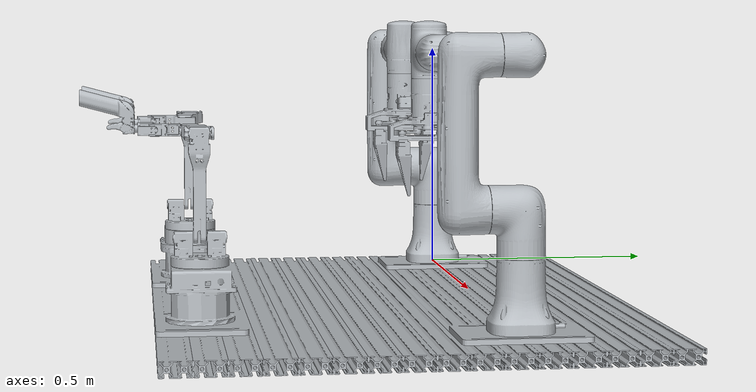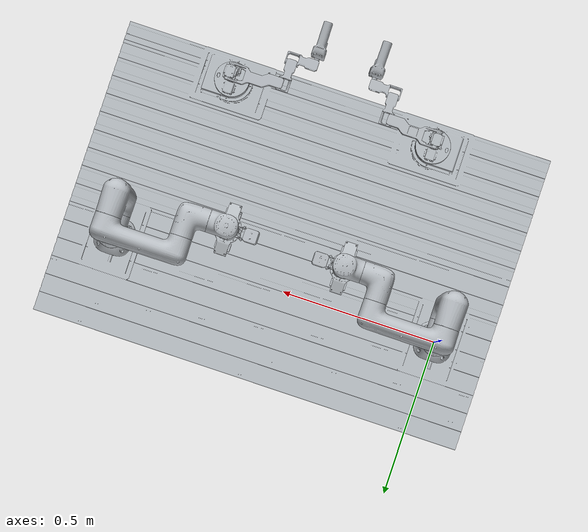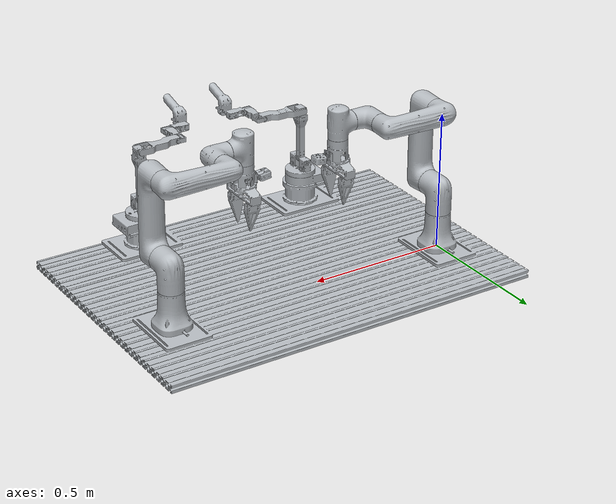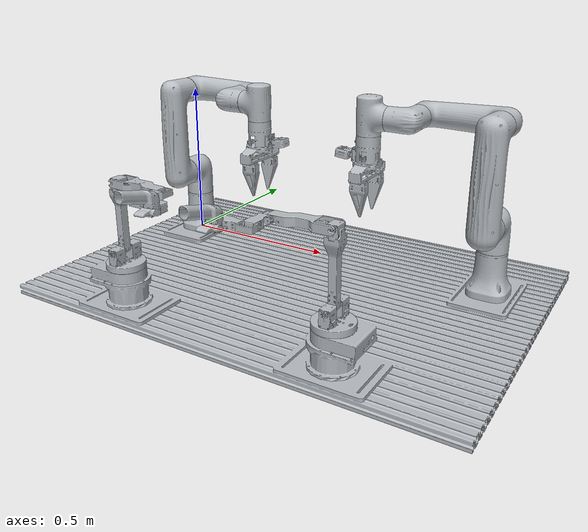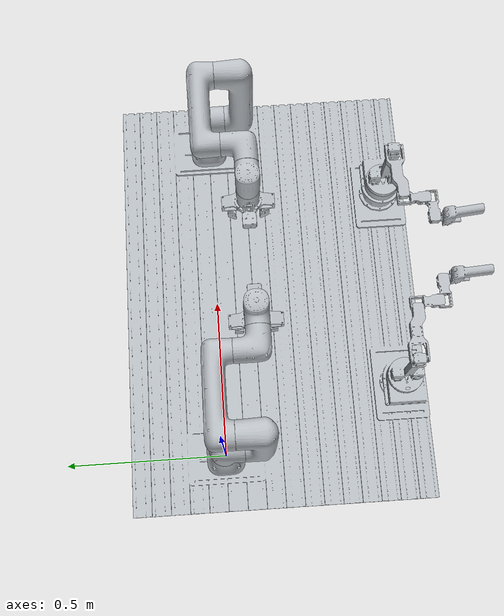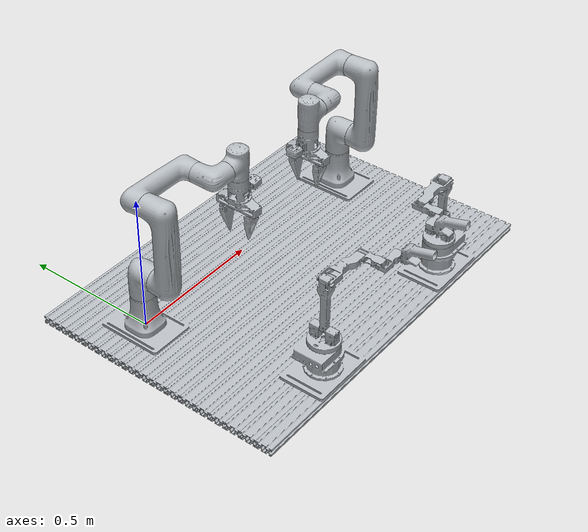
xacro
<?xml version="1.0"?>
<robot name="xtrainer_full_visual" xmlns:xacro="http://www.ros.org/wiki/xacro">
  <link name="xtrainer_root"/>
  <material name="xtrainer_visual_mat">
    <color rgba="0.72 0.74 0.76 1.0"/>
  </material>
  <link name="xtrainer_J1_1">
    <inertial>
      <origin xyz="0 0 0" rpy="0 0 0"/>
      <mass value="0.01"/>
      <inertia ixx="1e-5" ixy="0" ixz="0" iyy="1e-5" iyz="0" izz="1e-5"/>
    </inertial>
    <visual>
      <origin xyz="0 0 0" rpy="0 0 0"/>
      <geometry>
        <mesh filename="file://$(find nova_xtainer_description)/meshes/xtrainer_full_usd/J1_1.stl"/>
      </geometry>
      <material name="xtrainer_visual_mat"/>
    </visual>
  </link>
  <joint name="world_to_xtrainer_J1_1" type="fixed">
    <origin xyz="0 0 0" rpy="0 0 0"/>
    <parent link="xtrainer_root"/>
    <child link="xtrainer_J1_1"/>
  </joint>
  <link name="xtrainer_J1_2">
    <inertial>
      <origin xyz="0 0 0" rpy="0 0 0"/>
      <mass value="0.01"/>
      <inertia ixx="1e-5" ixy="0" ixz="0" iyy="1e-5" iyz="0" izz="1e-5"/>
    </inertial>
    <visual>
      <origin xyz="0 0 0" rpy="0 0 0"/>
      <geometry>
        <mesh filename="file://$(find nova_xtainer_description)/meshes/xtrainer_full_usd/J1_2.stl"/>
      </geometry>
      <material name="xtrainer_visual_mat"/>
    </visual>
  </link>
  <joint name="world_to_xtrainer_J1_2" type="fixed">
    <origin xyz="0 0 0" rpy="0 0 0"/>
    <parent link="xtrainer_root"/>
    <child link="xtrainer_J1_2"/>
  </joint>
  <link name="xtrainer_J1_3">
    <inertial>
      <origin xyz="0 0 0" rpy="0 0 0"/>
      <mass value="0.01"/>
      <inertia ixx="1e-5" ixy="0" ixz="0" iyy="1e-5" iyz="0" izz="1e-5"/>
    </inertial>
    <visual>
      <origin xyz="0 0 0" rpy="0 0 0"/>
      <geometry>
        <mesh filename="file://$(find nova_xtainer_description)/meshes/xtrainer_full_usd/J1_3.stl"/>
      </geometry>
      <material name="xtrainer_visual_mat"/>
    </visual>
  </link>
  <joint name="world_to_xtrainer_J1_3" type="fixed">
    <origin xyz="0 0 0" rpy="0 0 0"/>
    <parent link="xtrainer_root"/>
    <child link="xtrainer_J1_3"/>
  </joint>
  <link name="xtrainer_J1_4">
    <inertial>
      <origin xyz="0 0 0" rpy="0 0 0"/>
      <mass value="0.01"/>
      <inertia ixx="1e-5" ixy="0" ixz="0" iyy="1e-5" iyz="0" izz="1e-5"/>
    </inertial>
    <visual>
      <origin xyz="0 0 0" rpy="0 0 0"/>
      <geometry>
        <mesh filename="file://$(find nova_xtainer_description)/meshes/xtrainer_full_usd/J1_4.stl"/>
      </geometry>
      <material name="xtrainer_visual_mat"/>
    </visual>
  </link>
  <joint name="world_to_xtrainer_J1_4" type="fixed">
    <origin xyz="0 0 0" rpy="0 0 0"/>
    <parent link="xtrainer_root"/>
    <child link="xtrainer_J1_4"/>
  </joint>
  <link name="xtrainer_J1_5">
    <inertial>
      <origin xyz="0 0 0" rpy="0 0 0"/>
      <mass value="0.01"/>
      <inertia ixx="1e-5" ixy="0" ixz="0" iyy="1e-5" iyz="0" izz="1e-5"/>
    </inertial>
    <visual>
      <origin xyz="0 0 0" rpy="0 0 0"/>
      <geometry>
        <mesh filename="file://$(find nova_xtainer_description)/meshes/xtrainer_full_usd/J1_5.stl"/>
      </geometry>
      <material name="xtrainer_visual_mat"/>
    </visual>
  </link>
  <joint name="world_to_xtrainer_J1_5" type="fixed">
    <origin xyz="0 0 0" rpy="0 0 0"/>
    <parent link="xtrainer_root"/>
    <child link="xtrainer_J1_5"/>
  </joint>
  <link name="xtrainer_J1_6">
    <inertial>
      <origin xyz="0 0 0" rpy="0 0 0"/>
      <mass value="0.01"/>
      <inertia ixx="1e-5" ixy="0" ixz="0" iyy="1e-5" iyz="0" izz="1e-5"/>
    </inertial>
    <visual>
      <origin xyz="0 0 0" rpy="0 0 0"/>
      <geometry>
        <mesh filename="file://$(find nova_xtainer_description)/meshes/xtrainer_full_usd/J1_6.stl"/>
      </geometry>
      <material name="xtrainer_visual_mat"/>
    </visual>
  </link>
  <joint name="world_to_xtrainer_J1_6" type="fixed">
    <origin xyz="0 0 0" rpy="0 0 0"/>
    <parent link="xtrainer_root"/>
    <child link="xtrainer_J1_6"/>
  </joint>
  <link name="xtrainer_J1_7">
    <inertial>
      <origin xyz="0 0 0" rpy="0 0 0"/>
      <mass value="0.01"/>
      <inertia ixx="1e-5" ixy="0" ixz="0" iyy="1e-5" iyz="0" izz="1e-5"/>
    </inertial>
    <visual>
      <origin xyz="0 0 0" rpy="0 0 0"/>
      <geometry>
        <mesh filename="file://$(find nova_xtainer_description)/meshes/xtrainer_full_usd/J1_7.stl"/>
      </geometry>
      <material name="xtrainer_visual_mat"/>
    </visual>
  </link>
  <joint name="world_to_xtrainer_J1_7" type="fixed">
    <origin xyz="0 0 0" rpy="0 0 0"/>
    <parent link="xtrainer_root"/>
    <child link="xtrainer_J1_7"/>
  </joint>
  <link name="xtrainer_J1_8">
    <inertial>
      <origin xyz="0 0 0" rpy="0 0 0"/>
      <mass value="0.01"/>
      <inertia ixx="1e-5" ixy="0" ixz="0" iyy="1e-5" iyz="0" izz="1e-5"/>
    </inertial>
    <visual>
      <origin xyz="0 0 0" rpy="0 0 0"/>
      <geometry>
        <mesh filename="file://$(find nova_xtainer_description)/meshes/xtrainer_full_usd/J1_8.stl"/>
      </geometry>
      <material name="xtrainer_visual_mat"/>
    </visual>
  </link>
  <joint name="world_to_xtrainer_J1_8" type="fixed">
    <origin xyz="0 0 0" rpy="0 0 0"/>
    <parent link="xtrainer_root"/>
    <child link="xtrainer_J1_8"/>
  </joint>
  <link name="xtrainer_J2_1">
    <inertial>
      <origin xyz="0 0 0" rpy="0 0 0"/>
      <mass value="0.01"/>
      <inertia ixx="1e-5" ixy="0" ixz="0" iyy="1e-5" iyz="0" izz="1e-5"/>
    </inertial>
    <visual>
      <origin xyz="0 0 0" rpy="0 0 0"/>
      <geometry>
        <mesh filename="file://$(find nova_xtainer_description)/meshes/xtrainer_full_usd/J2_1.stl"/>
      </geometry>
      <material name="xtrainer_visual_mat"/>
    </visual>
  </link>
  <joint name="world_to_xtrainer_J2_1" type="fixed">
    <origin xyz="0 0 0" rpy="0 0 0"/>
    <parent link="xtrainer_root"/>
    <child link="xtrainer_J2_1"/>
  </joint>
  <link name="xtrainer_J2_2">
    <inertial>
      <origin xyz="0 0 0" rpy="0 0 0"/>
      <mass value="0.01"/>
      <inertia ixx="1e-5" ixy="0" ixz="0" iyy="1e-5" iyz="0" izz="1e-5"/>
    </inertial>
    <visual>
      <origin xyz="0 0 0" rpy="0 0 0"/>
      <geometry>
        <mesh filename="file://$(find nova_xtainer_description)/meshes/xtrainer_full_usd/J2_2.stl"/>
      </geometry>
      <material name="xtrainer_visual_mat"/>
    </visual>
  </link>
  <joint name="world_to_xtrainer_J2_2" type="fixed">
    <origin xyz="0 0 0" rpy="0 0 0"/>
    <parent link="xtrainer_root"/>
    <child link="xtrainer_J2_2"/>
  </joint>
  <link name="xtrainer_J2_3">
    <inertial>
      <origin xyz="0 0 0" rpy="0 0 0"/>
      <mass value="0.01"/>
      <inertia ixx="1e-5" ixy="0" ixz="0" iyy="1e-5" iyz="0" izz="1e-5"/>
    </inertial>
    <visual>
      <origin xyz="0 0 0" rpy="0 0 0"/>
      <geometry>
        <mesh filename="file://$(find nova_xtainer_description)/meshes/xtrainer_full_usd/J2_3.stl"/>
      </geometry>
      <material name="xtrainer_visual_mat"/>
    </visual>
  </link>
  <joint name="world_to_xtrainer_J2_3" type="fixed">
    <origin xyz="0 0 0" rpy="0 0 0"/>
    <parent link="xtrainer_root"/>
    <child link="xtrainer_J2_3"/>
  </joint>
  <link name="xtrainer_J2_4">
    <inertial>
      <origin xyz="0 0 0" rpy="0 0 0"/>
      <mass value="0.01"/>
      <inertia ixx="1e-5" ixy="0" ixz="0" iyy="1e-5" iyz="0" izz="1e-5"/>
    </inertial>
    <visual>
      <origin xyz="0 0 0" rpy="0 0 0"/>
      <geometry>
        <mesh filename="file://$(find nova_xtainer_description)/meshes/xtrainer_full_usd/J2_4.stl"/>
      </geometry>
      <material name="xtrainer_visual_mat"/>
    </visual>
  </link>
  <joint name="world_to_xtrainer_J2_4" type="fixed">
    <origin xyz="0 0 0" rpy="0 0 0"/>
    <parent link="xtrainer_root"/>
    <child link="xtrainer_J2_4"/>
  </joint>
  <link name="xtrainer_J2_5">
    <inertial>
      <origin xyz="0 0 0" rpy="0 0 0"/>
      <mass value="0.01"/>
      <inertia ixx="1e-5" ixy="0" ixz="0" iyy="1e-5" iyz="0" izz="1e-5"/>
    </inertial>
    <visual>
      <origin xyz="0 0 0" rpy="0 0 0"/>
      <geometry>
        <mesh filename="file://$(find nova_xtainer_description)/meshes/xtrainer_full_usd/J2_5.stl"/>
      </geometry>
      <material name="xtrainer_visual_mat"/>
    </visual>
  </link>
  <joint name="world_to_xtrainer_J2_5" type="fixed">
    <origin xyz="0 0 0" rpy="0 0 0"/>
    <parent link="xtrainer_root"/>
    <child link="xtrainer_J2_5"/>
  </joint>
  <link name="xtrainer_J2_6">
    <inertial>
      <origin xyz="0 0 0" rpy="0 0 0"/>
      <mass value="0.01"/>
      <inertia ixx="1e-5" ixy="0" ixz="0" iyy="1e-5" iyz="0" izz="1e-5"/>
    </inertial>
    <visual>
      <origin xyz="0 0 0" rpy="0 0 0"/>
      <geometry>
        <mesh filename="file://$(find nova_xtainer_description)/meshes/xtrainer_full_usd/J2_6.stl"/>
      </geometry>
      <material name="xtrainer_visual_mat"/>
    </visual>
  </link>
  <joint name="world_to_xtrainer_J2_6" type="fixed">
    <origin xyz="0 0 0" rpy="0 0 0"/>
    <parent link="xtrainer_root"/>
    <child link="xtrainer_J2_6"/>
  </joint>
  <link name="xtrainer_J2_7">
    <inertial>
      <origin xyz="0 0 0" rpy="0 0 0"/>
      <mass value="0.01"/>
      <inertia ixx="1e-5" ixy="0" ixz="0" iyy="1e-5" iyz="0" izz="1e-5"/>
    </inertial>
    <visual>
      <origin xyz="0 0 0" rpy="0 0 0"/>
      <geometry>
        <mesh filename="file://$(find nova_xtainer_description)/meshes/xtrainer_full_usd/J2_7.stl"/>
      </geometry>
      <material name="xtrainer_visual_mat"/>
    </visual>
  </link>
  <joint name="world_to_xtrainer_J2_7" type="fixed">
    <origin xyz="0 0 0" rpy="0 0 0"/>
    <parent link="xtrainer_root"/>
    <child link="xtrainer_J2_7"/>
  </joint>
  <link name="xtrainer_J2_8">
    <inertial>
      <origin xyz="0 0 0" rpy="0 0 0"/>
      <mass value="0.01"/>
      <inertia ixx="1e-5" ixy="0" ixz="0" iyy="1e-5" iyz="0" izz="1e-5"/>
    </inertial>
    <visual>
      <origin xyz="0 0 0" rpy="0 0 0"/>
      <geometry>
        <mesh filename="file://$(find nova_xtainer_description)/meshes/xtrainer_full_usd/J2_8.stl"/>
      </geometry>
      <material name="xtrainer_visual_mat"/>
    </visual>
  </link>
  <joint name="world_to_xtrainer_J2_8" type="fixed">
    <origin xyz="0 0 0" rpy="0 0 0"/>
    <parent link="xtrainer_root"/>
    <child link="xtrainer_J2_8"/>
  </joint>
  <link name="xtrainer_J3_1">
    <inertial>
      <origin xyz="0 0 0" rpy="0 0 0"/>
      <mass value="0.01"/>
      <inertia ixx="1e-5" ixy="0" ixz="0" iyy="1e-5" iyz="0" izz="1e-5"/>
    </inertial>
    <visual>
      <origin xyz="0 0 0" rpy="0 0 0"/>
      <geometry>
        <mesh filename="file://$(find nova_xtainer_description)/meshes/xtrainer_full_usd/J3_1.stl"/>
      </geometry>
      <material name="xtrainer_visual_mat"/>
    </visual>
  </link>
  <joint name="world_to_xtrainer_J3_1" type="fixed">
    <origin xyz="0 0 0" rpy="0 0 0"/>
    <parent link="xtrainer_root"/>
    <child link="xtrainer_J3_1"/>
  </joint>
  <link name="xtrainer_J3_2">
    <inertial>
      <origin xyz="0 0 0" rpy="0 0 0"/>
      <mass value="0.01"/>
      <inertia ixx="1e-5" ixy="0" ixz="0" iyy="1e-5" iyz="0" izz="1e-5"/>
    </inertial>
    <visual>
      <origin xyz="0 0 0" rpy="0 0 0"/>
      <geometry>
        <mesh filename="file://$(find nova_xtainer_description)/meshes/xtrainer_full_usd/J3_2.stl"/>
      </geometry>
      <material name="xtrainer_visual_mat"/>
    </visual>
  </link>
  <joint name="world_to_xtrainer_J3_2" type="fixed">
    <origin xyz="0 0 0" rpy="0 0 0"/>
    <parent link="xtrainer_root"/>
    <child link="xtrainer_J3_2"/>
  </joint>
  <link name="xtrainer_J3_3">
    <inertial>
      <origin xyz="0 0 0" rpy="0 0 0"/>
      <mass value="0.01"/>
      <inertia ixx="1e-5" ixy="0" ixz="0" iyy="1e-5" iyz="0" izz="1e-5"/>
    </inertial>
    <visual>
      <origin xyz="0 0 0" rpy="0 0 0"/>
      <geometry>
        <mesh filename="file://$(find nova_xtainer_description)/meshes/xtrainer_full_usd/J3_3.stl"/>
      </geometry>
      <material name="xtrainer_visual_mat"/>
    </visual>
  </link>
  <joint name="world_to_xtrainer_J3_3" type="fixed">
    <origin xyz="0 0 0" rpy="0 0 0"/>
    <parent link="xtrainer_root"/>
    <child link="xtrainer_J3_3"/>
  </joint>
  <link name="xtrainer_J3_4">
    <inertial>
      <origin xyz="0 0 0" rpy="0 0 0"/>
      <mass value="0.01"/>
      <inertia ixx="1e-5" ixy="0" ixz="0" iyy="1e-5" iyz="0" izz="1e-5"/>
    </inertial>
    <visual>
      <origin xyz="0 0 0" rpy="0 0 0"/>
      <geometry>
        <mesh filename="file://$(find nova_xtainer_description)/meshes/xtrainer_full_usd/J3_4.stl"/>
      </geometry>
      <material name="xtrainer_visual_mat"/>
    </visual>
  </link>
  <joint name="world_to_xtrainer_J3_4" type="fixed">
    <origin xyz="0 0 0" rpy="0 0 0"/>
    <parent link="xtrainer_root"/>
    <child link="xtrainer_J3_4"/>
  </joint>
  <link name="xtrainer_J3_5">
    <inertial>
      <origin xyz="0 0 0" rpy="0 0 0"/>
      <mass value="0.01"/>
      <inertia ixx="1e-5" ixy="0" ixz="0" iyy="1e-5" iyz="0" izz="1e-5"/>
    </inertial>
    <visual>
      <origin xyz="0 0 0" rpy="0 0 0"/>
      <geometry>
        <mesh filename="file://$(find nova_xtainer_description)/meshes/xtrainer_full_usd/J3_5.stl"/>
      </geometry>
      <material name="xtrainer_visual_mat"/>
    </visual>
  </link>
  <joint name="world_to_xtrainer_J3_5" type="fixed">
    <origin xyz="0 0 0" rpy="0 0 0"/>
    <parent link="xtrainer_root"/>
    <child link="xtrainer_J3_5"/>
  </joint>
  <link name="xtrainer_J3_6">
    <inertial>
      <origin xyz="0 0 0" rpy="0 0 0"/>
      <mass value="0.01"/>
      <inertia ixx="1e-5" ixy="0" ixz="0" iyy="1e-5" iyz="0" izz="1e-5"/>
    </inertial>
    <visual>
      <origin xyz="0 0 0" rpy="0 0 0"/>
      <geometry>
        <mesh filename="file://$(find nova_xtainer_description)/meshes/xtrainer_full_usd/J3_6.stl"/>
      </geometry>
      <material name="xtrainer_visual_mat"/>
    </visual>
  </link>
  <joint name="world_to_xtrainer_J3_6" type="fixed">
    <origin xyz="0 0 0" rpy="0 0 0"/>
    <parent link="xtrainer_root"/>
    <child link="xtrainer_J3_6"/>
  </joint>
  <link name="xtrainer_J4_1">
    <inertial>
      <origin xyz="0 0 0" rpy="0 0 0"/>
      <mass value="0.01"/>
      <inertia ixx="1e-5" ixy="0" ixz="0" iyy="1e-5" iyz="0" izz="1e-5"/>
    </inertial>
    <visual>
      <origin xyz="0 0 0" rpy="0 0 0"/>
      <geometry>
        <mesh filename="file://$(find nova_xtainer_description)/meshes/xtrainer_full_usd/J4_1.stl"/>
      </geometry>
      <material name="xtrainer_visual_mat"/>
    </visual>
  </link>
  <joint name="world_to_xtrainer_J4_1" type="fixed">
    <origin xyz="0 0 0" rpy="0 0 0"/>
    <parent link="xtrainer_root"/>
    <child link="xtrainer_J4_1"/>
  </joint>
  <link name="xtrainer_J4_2">
    <inertial>
      <origin xyz="0 0 0" rpy="0 0 0"/>
      <mass value="0.01"/>
      <inertia ixx="1e-5" ixy="0" ixz="0" iyy="1e-5" iyz="0" izz="1e-5"/>
    </inertial>
    <visual>
      <origin xyz="0 0 0" rpy="0 0 0"/>
      <geometry>
        <mesh filename="file://$(find nova_xtainer_description)/meshes/xtrainer_full_usd/J4_2.stl"/>
      </geometry>
      <material name="xtrainer_visual_mat"/>
    </visual>
  </link>
  <joint name="world_to_xtrainer_J4_2" type="fixed">
    <origin xyz="0 0 0" rpy="0 0 0"/>
    <parent link="xtrainer_root"/>
    <child link="xtrainer_J4_2"/>
  </joint>
  <link name="xtrainer_J4_3">
    <inertial>
      <origin xyz="0 0 0" rpy="0 0 0"/>
      <mass value="0.01"/>
      <inertia ixx="1e-5" ixy="0" ixz="0" iyy="1e-5" iyz="0" izz="1e-5"/>
    </inertial>
    <visual>
      <origin xyz="0 0 0" rpy="0 0 0"/>
      <geometry>
        <mesh filename="file://$(find nova_xtainer_description)/meshes/xtrainer_full_usd/J4_3.stl"/>
      </geometry>
      <material name="xtrainer_visual_mat"/>
    </visual>
  </link>
  <joint name="world_to_xtrainer_J4_3" type="fixed">
    <origin xyz="0 0 0" rpy="0 0 0"/>
    <parent link="xtrainer_root"/>
    <child link="xtrainer_J4_3"/>
  </joint>
  <link name="xtrainer_J4_4">
    <inertial>
      <origin xyz="0 0 0" rpy="0 0 0"/>
      <mass value="0.01"/>
      <inertia ixx="1e-5" ixy="0" ixz="0" iyy="1e-5" iyz="0" izz="1e-5"/>
    </inertial>
    <visual>
      <origin xyz="0 0 0" rpy="0 0 0"/>
      <geometry>
        <mesh filename="file://$(find nova_xtainer_description)/meshes/xtrainer_full_usd/J4_4.stl"/>
      </geometry>
      <material name="xtrainer_visual_mat"/>
    </visual>
  </link>
  <joint name="world_to_xtrainer_J4_4" type="fixed">
    <origin xyz="0 0 0" rpy="0 0 0"/>
    <parent link="xtrainer_root"/>
    <child link="xtrainer_J4_4"/>
  </joint>
  <link name="xtrainer_J4_5">
    <inertial>
      <origin xyz="0 0 0" rpy="0 0 0"/>
      <mass value="0.01"/>
      <inertia ixx="1e-5" ixy="0" ixz="0" iyy="1e-5" iyz="0" izz="1e-5"/>
    </inertial>
    <visual>
      <origin xyz="0 0 0" rpy="0 0 0"/>
      <geometry>
        <mesh filename="file://$(find nova_xtainer_description)/meshes/xtrainer_full_usd/J4_5.stl"/>
      </geometry>
      <material name="xtrainer_visual_mat"/>
    </visual>
  </link>
  <joint name="world_to_xtrainer_J4_5" type="fixed">
    <origin xyz="0 0 0" rpy="0 0 0"/>
    <parent link="xtrainer_root"/>
    <child link="xtrainer_J4_5"/>
  </joint>
  <link name="xtrainer_J4_6">
    <inertial>
      <origin xyz="0 0 0" rpy="0 0 0"/>
      <mass value="0.01"/>
      <inertia ixx="1e-5" ixy="0" ixz="0" iyy="1e-5" iyz="0" izz="1e-5"/>
    </inertial>
    <visual>
      <origin xyz="0 0 0" rpy="0 0 0"/>
      <geometry>
        <mesh filename="file://$(find nova_xtainer_description)/meshes/xtrainer_full_usd/J4_6.stl"/>
      </geometry>
      <material name="xtrainer_visual_mat"/>
    </visual>
  </link>
  <joint name="world_to_xtrainer_J4_6" type="fixed">
    <origin xyz="0 0 0" rpy="0 0 0"/>
    <parent link="xtrainer_root"/>
    <child link="xtrainer_J4_6"/>
  </joint>
  <link name="xtrainer_base_link">
    <inertial>
      <origin xyz="0 0 0" rpy="0 0 0"/>
      <mass value="0.01"/>
      <inertia ixx="1e-5" ixy="0" ixz="0" iyy="1e-5" iyz="0" izz="1e-5"/>
    </inertial>
    <visual>
      <origin xyz="0 0 0" rpy="0 0 0"/>
      <geometry>
        <mesh filename="file://$(find nova_xtainer_description)/meshes/xtrainer_full_usd/base_link.stl"/>
      </geometry>
      <material name="xtrainer_visual_mat"/>
    </visual>
  </link>
  <joint name="world_to_xtrainer_base_link" type="fixed">
    <origin xyz="0 0 0" rpy="0 0 0"/>
    <parent link="xtrainer_root"/>
    <child link="xtrainer_base_link"/>
  </joint>
  <link name="cam_main_frame">
    <inertial>
      <origin xyz="0 0 0" rpy="0 0 0"/>
      <mass value="0.01"/>
      <inertia ixx="1e-5" ixy="0" ixz="0" iyy="1e-5" iyz="0" izz="1e-5"/>
    </inertial>
  </link>
  <joint name="world_to_cam_main_frame" type="fixed">
    <origin xyz="0.53 -0.55 1.0" rpy="-2.58 0.0 0.0"/>
    <parent link="xtrainer_root"/>
    <child link="cam_main_frame"/>
  </joint>
  <link name="cam_side_frame">
    <inertial>
      <origin xyz="0 0 0" rpy="0 0 0"/>
      <mass value="0.01"/>
      <inertia ixx="1e-5" ixy="0" ixz="0" iyy="1e-5" iyz="0" izz="1e-5"/>
    </inertial>
  </link>
  <joint name="world_to_cam_side_frame" type="fixed">
    <origin xyz="0.56 -0.65 0.55" rpy="-2.04 0.0 0.0"/>
    <parent link="xtrainer_root"/>
    <child link="cam_side_frame"/>
  </joint>
  <link name="cam_left_arm_frame">
    <inertial>
      <origin xyz="0 0 0" rpy="0 0 0"/>
      <mass value="0.01"/>
      <inertia ixx="1e-5" ixy="0" ixz="0" iyy="1e-5" iyz="0" izz="1e-5"/>
    </inertial>
  </link>
  <joint name="world_to_cam_left_arm_frame" type="fixed">
    <origin xyz="0.369 -0.055 0.42" rpy="-0.262 0.0 0.0"/>
    <parent link="xtrainer_root"/>
    <child link="cam_left_arm_frame"/>
  </joint>
  <link name="cam_right_arm_frame">
    <inertial>
      <origin xyz="0 0 0" rpy="0 0 0"/>
      <mass value="0.01"/>
      <inertia ixx="1e-5" ixy="0" ixz="0" iyy="1e-5" iyz="0" izz="1e-5"/>
    </inertial>
  </link>
  <joint name="world_to_cam_right_arm_frame" type="fixed">
    <origin xyz="0.739 -0.055 0.42" rpy="-0.262 0.0 0.0"/>
    <parent link="xtrainer_root"/>
    <child link="cam_right_arm_frame"/>
  </joint>
</robot>
